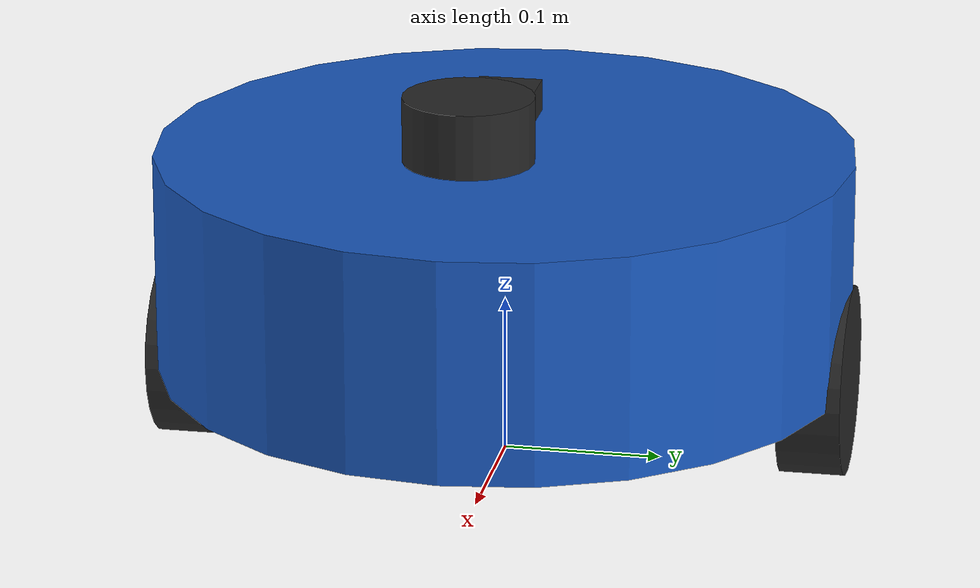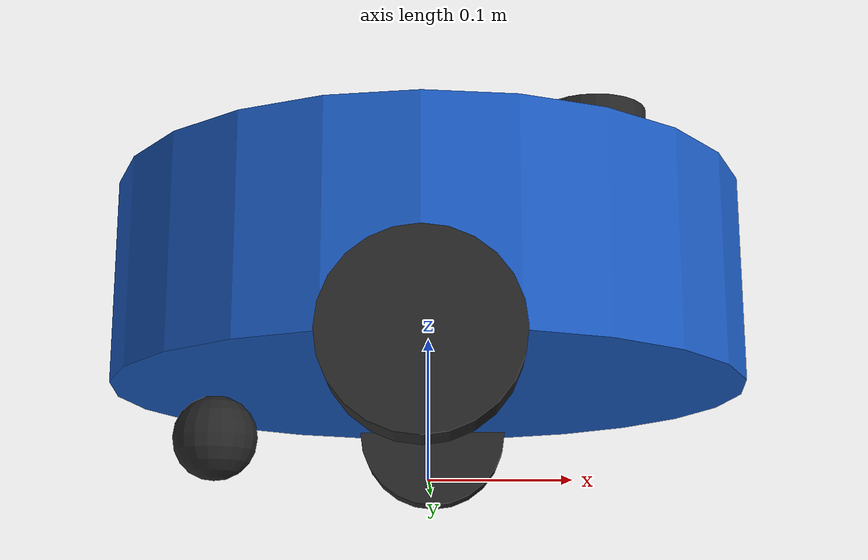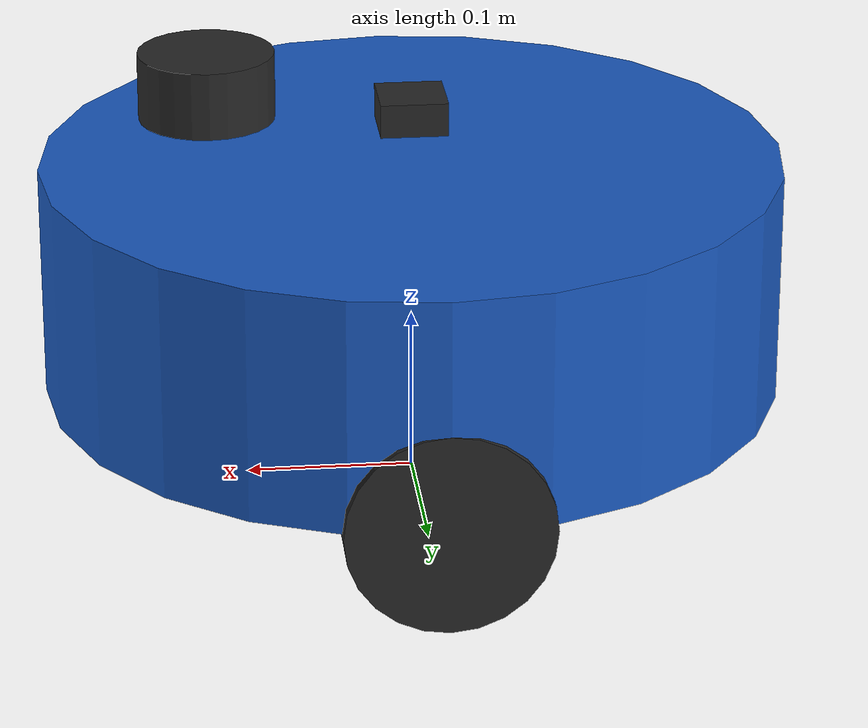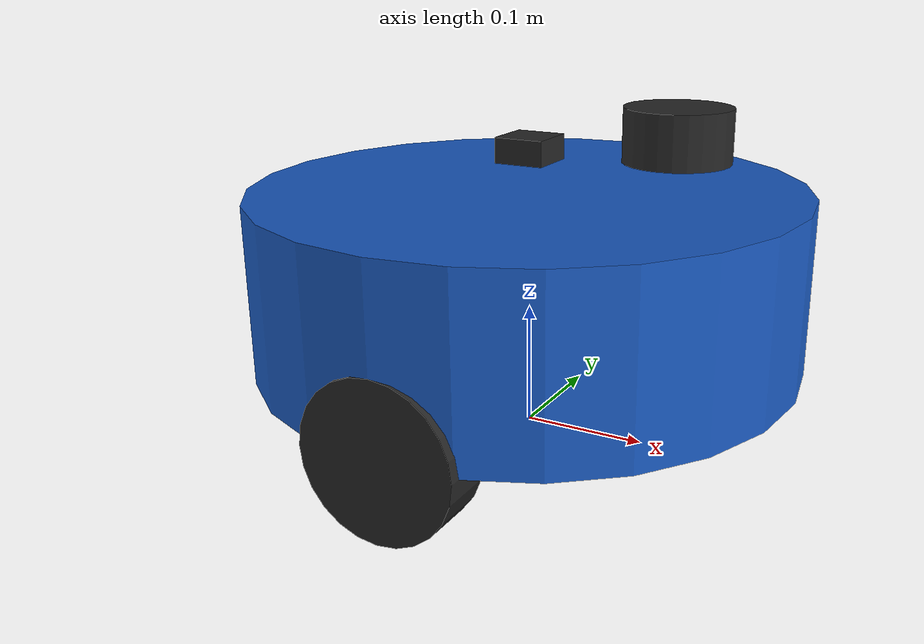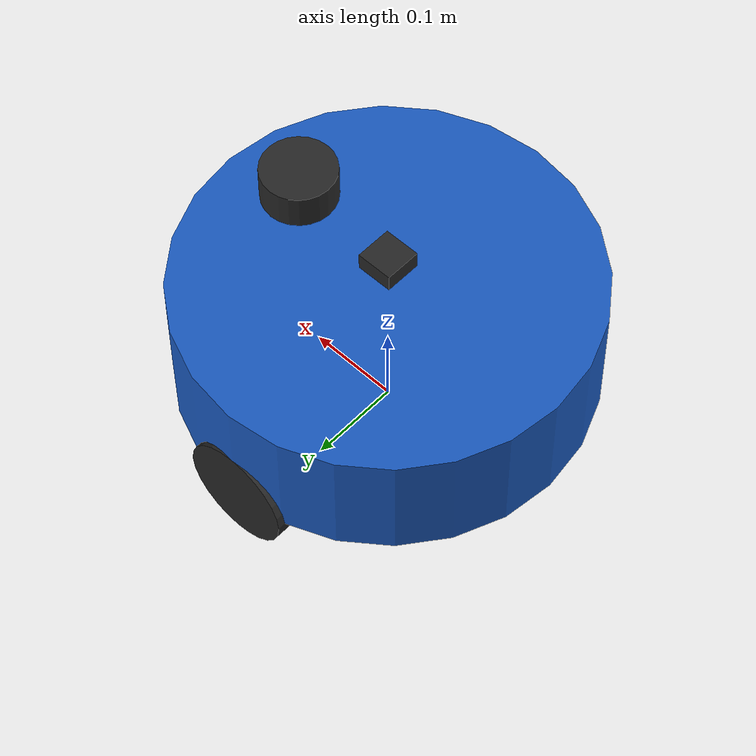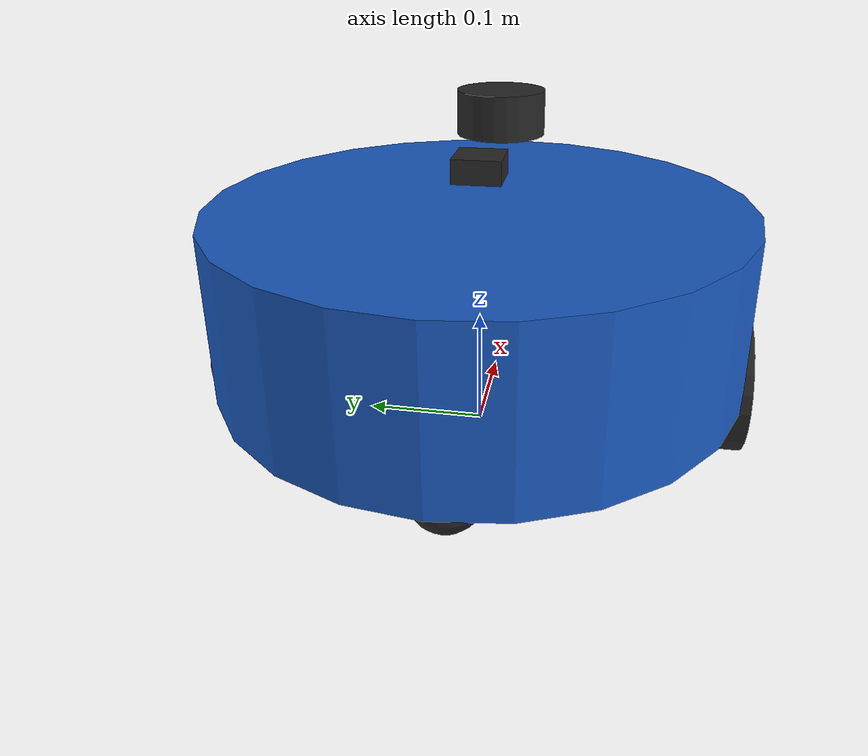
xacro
<?xml version="1.0"?>
<robot xmlns:xacro="http://www.ros.org/wiki/xacro" name="indoor_bot">
  <xacro:property name="base_radius" value="0.22"/>
  <xacro:property name="base_height" value="0.14"/>
  <xacro:property name="wheel_radius" value="0.06"/>
  <xacro:property name="wheel_width" value="0.04"/>
  <xacro:property name="wheel_y_offset" value="0.20"/>
  <xacro:property name="wheel_x_offset" value="0.0"/>

  <material name="blue">
    <color rgba="0.1 0.35 0.75 1.0"/>
  </material>

  <material name="dark">
    <color rgba="0.15 0.15 0.15 1.0"/>
  </material>

  <link name="base_footprint"/>

  <link name="base_link">
    <visual>
      <origin xyz="0 0 ${wheel_radius + base_height / 2.0}" rpy="0 0 0"/>
      <geometry>
        <cylinder radius="${base_radius}" length="${base_height}"/>
      </geometry>
      <material name="blue"/>
    </visual>
    <collision>
      <origin xyz="0 0 ${wheel_radius + base_height / 2.0}" rpy="0 0 0"/>
      <geometry>
        <cylinder radius="${base_radius}" length="${base_height}"/>
      </geometry>
    </collision>
    <inertial>
      <origin xyz="0 0 ${wheel_radius + base_height / 2.0}" rpy="0 0 0"/>
      <mass value="12.0"/>
      <inertia ixx="0.25" ixy="0.0" ixz="0.0" iyy="0.25" iyz="0.0" izz="0.35"/>
    </inertial>
  </link>

  <joint name="base_footprint_joint" type="fixed">
    <parent link="base_footprint"/>
    <child link="base_link"/>
    <origin xyz="0 0 0" rpy="0 0 0"/>
  </joint>

  <link name="left_wheel_link">
    <visual>
      <origin xyz="0 0 0" rpy="1.57079632679 0 0"/>
      <geometry>
        <cylinder radius="${wheel_radius}" length="${wheel_width}"/>
      </geometry>
      <material name="dark"/>
    </visual>
    <collision>
      <origin xyz="0 0 0" rpy="1.57079632679 0 0"/>
      <geometry>
        <cylinder radius="${wheel_radius}" length="${wheel_width}"/>
      </geometry>
    </collision>
    <inertial>
      <mass value="1.0"/>
      <inertia ixx="0.01" ixy="0.0" ixz="0.0" iyy="0.01" iyz="0.0" izz="0.01"/>
    </inertial>
  </link>

  <joint name="left_wheel_joint" type="continuous">
    <parent link="base_link"/>
    <child link="left_wheel_link"/>
    <origin xyz="${wheel_x_offset} ${wheel_y_offset} ${wheel_radius}" rpy="0 0 0"/>
    <axis xyz="0 1 0"/>
  </joint>

  <link name="right_wheel_link">
    <visual>
      <origin xyz="0 0 0" rpy="1.57079632679 0 0"/>
      <geometry>
        <cylinder radius="${wheel_radius}" length="${wheel_width}"/>
      </geometry>
      <material name="dark"/>
    </visual>
    <collision>
      <origin xyz="0 0 0" rpy="1.57079632679 0 0"/>
      <geometry>
        <cylinder radius="${wheel_radius}" length="${wheel_width}"/>
      </geometry>
    </collision>
    <inertial>
      <mass value="1.0"/>
      <inertia ixx="0.01" ixy="0.0" ixz="0.0" iyy="0.01" iyz="0.0" izz="0.01"/>
    </inertial>
  </link>

  <joint name="right_wheel_joint" type="continuous">
    <parent link="base_link"/>
    <child link="right_wheel_link"/>
    <origin xyz="${wheel_x_offset} ${-wheel_y_offset} ${wheel_radius}" rpy="0 0 0"/>
    <axis xyz="0 1 0"/>
  </joint>

  <link name="caster_link">
    <visual>
      <origin xyz="0 0 0" rpy="0 0 0"/>
      <geometry>
        <sphere radius="0.03"/>
      </geometry>
      <material name="dark"/>
    </visual>
    <collision>
      <origin xyz="0 0 0" rpy="0 0 0"/>
      <geometry>
        <sphere radius="0.03"/>
      </geometry>
    </collision>
    <inertial>
      <mass value="0.2"/>
      <inertia ixx="0.001" ixy="0.0" ixz="0.0" iyy="0.001" iyz="0.0" izz="0.001"/>
    </inertial>
  </link>

  <joint name="caster_joint" type="fixed">
    <parent link="base_link"/>
    <child link="caster_link"/>
    <origin xyz="-0.15 0 0.03" rpy="0 0 0"/>
  </joint>

  <link name="laser_link">
    <visual>
      <origin xyz="0 0 0" rpy="0 0 0"/>
      <geometry>
        <cylinder radius="0.04" length="0.04"/>
      </geometry>
      <material name="dark"/>
    </visual>
    <collision>
      <origin xyz="0 0 0" rpy="0 0 0"/>
      <geometry>
        <cylinder radius="0.04" length="0.04"/>
      </geometry>
    </collision>
    <inertial>
      <mass value="0.3"/>
      <inertia ixx="0.001" ixy="0.0" ixz="0.0" iyy="0.001" iyz="0.0" izz="0.001"/>
    </inertial>
  </link>

  <joint name="laser_joint" type="fixed">
    <parent link="base_link"/>
    <child link="laser_link"/>
    <origin xyz="0.12 0 ${wheel_radius + base_height + 0.05}" rpy="0 0 0"/>
  </joint>

  <link name="imu_link">
    <visual>
      <origin xyz="0 0 0" rpy="0 0 0"/>
      <geometry>
        <box size="0.04 0.04 0.02"/>
      </geometry>
      <material name="dark"/>
    </visual>
    <collision>
      <origin xyz="0 0 0" rpy="0 0 0"/>
      <geometry>
        <box size="0.04 0.04 0.02"/>
      </geometry>
    </collision>
    <inertial>
      <mass value="0.1"/>
      <inertia ixx="0.0002" ixy="0.0" ixz="0.0" iyy="0.0002" iyz="0.0" izz="0.0002"/>
    </inertial>
  </link>

  <joint name="imu_joint" type="fixed">
    <parent link="base_link"/>
    <child link="imu_link"/>
    <origin xyz="0 0 ${wheel_radius + base_height + 0.03}" rpy="0 0 0"/>
  </joint>

  <gazebo reference="base_link">
    <material>Gazebo/Blue</material>
  </gazebo>

  <gazebo reference="left_wheel_link">
    <material>Gazebo/Black</material>
    <mu1>1.0</mu1>
    <mu2>1.0</mu2>
  </gazebo>

  <gazebo reference="right_wheel_link">
    <material>Gazebo/Black</material>
    <mu1>1.0</mu1>
    <mu2>1.0</mu2>
  </gazebo>

  <gazebo reference="caster_link">
    <material>Gazebo/Grey</material>
    <mu1>0.1</mu1>
    <mu2>0.1</mu2>
  </gazebo>

  <gazebo reference="laser_link">
    <sensor name="front_laser" type="ray">
      <pose>0 0 0 0 0 0</pose>
      <update_rate>10.0</update_rate>
      <ray>
        <scan>
          <horizontal>
            <samples>720</samples>
            <resolution>1</resolution>
            <min_angle>-3.14159</min_angle>
            <max_angle>3.14159</max_angle>
          </horizontal>
        </scan>
        <range>
          <min>0.12</min>
          <max>12.0</max>
          <resolution>0.01</resolution>
        </range>
      </ray>
      <plugin name="laser_controller" filename="libgazebo_ros_ray_sensor.so">
        <ros>
          <remapping>~/out:=scan</remapping>
        </ros>
        <frame_name>laser_link</frame_name>
        <output_type>sensor_msgs/LaserScan</output_type>
      </plugin>
    </sensor>
  </gazebo>

  <gazebo reference="imu_link">
    <sensor name="imu_sensor" type="imu">
      <always_on>true</always_on>
      <update_rate>50.0</update_rate>
      <plugin name="imu_plugin" filename="libgazebo_ros_imu_sensor.so">
        <ros>
          <remapping>~/out:=imu/data</remapping>
        </ros>
        <frame_name>imu_link</frame_name>
      </plugin>
    </sensor>
  </gazebo>

  <gazebo>
    <plugin name="diff_drive_controller" filename="libgazebo_ros_diff_drive.so">
      <ros>
        <namespace>/</namespace>
      </ros>
      <update_rate>50</update_rate>
      <left_joint>left_wheel_joint</left_joint>
      <right_joint>right_wheel_joint</right_joint>
      <wheel_separation>${2.0 * wheel_y_offset}</wheel_separation>
      <wheel_diameter>${2.0 * wheel_radius}</wheel_diameter>
      <max_wheel_torque>20.0</max_wheel_torque>
      <max_wheel_acceleration>5.0</max_wheel_acceleration>
      <command_topic>cmd_vel</command_topic>
      <odometry_topic>odom</odometry_topic>
      <odometry_frame>odom</odometry_frame>
      <robot_base_frame>base_footprint</robot_base_frame>
      <publish_odom>true</publish_odom>
      <publish_odom_tf>true</publish_odom_tf>
      <publish_wheel_tf>false</publish_wheel_tf>
    </plugin>
  </gazebo>
</robot>
